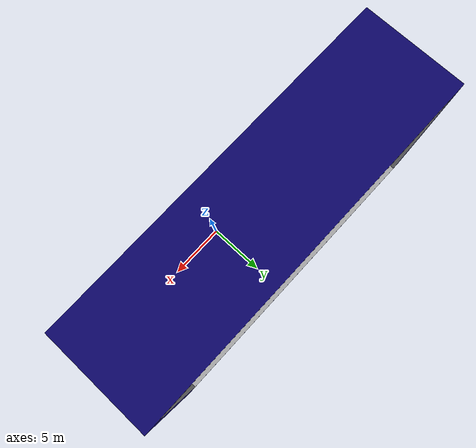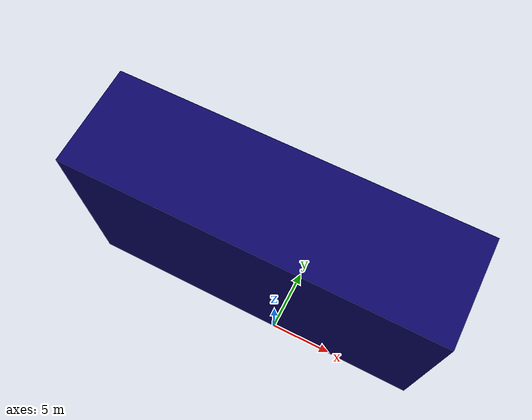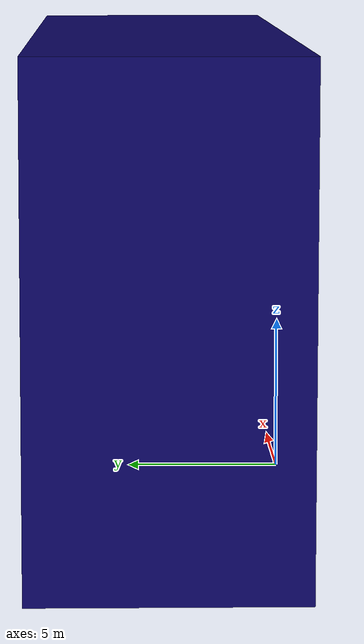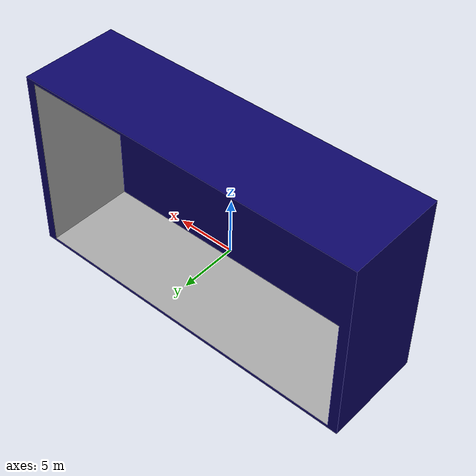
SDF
<?xml version='1.0'?>
<sdf version="1.6">
	<model name="Arena">
      <static>true</static>
      <link name="body">
        <collision name = 'collision'>
          <geometry>
            <mesh>
              <uri>model://walls/Floor_Blue.dae</uri>
            </mesh>
          </geometry>
        </collision>
        <visual name="visual">
          <geometry>
            <mesh>
            	<uri>model://walls/Floor_Blue.dae</uri>
            	<scale>1 1 1</scale>
            </mesh>
          </geometry>
        </visual>
      </link>
    </model>
</sdf>
